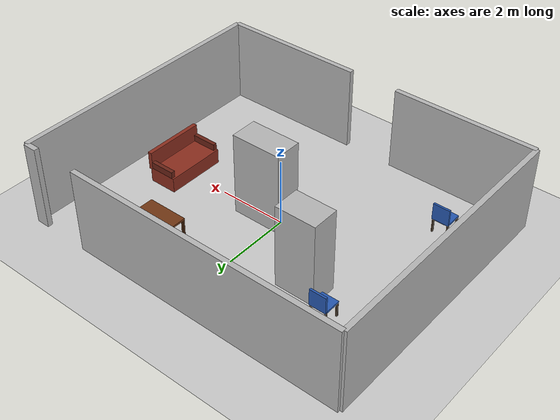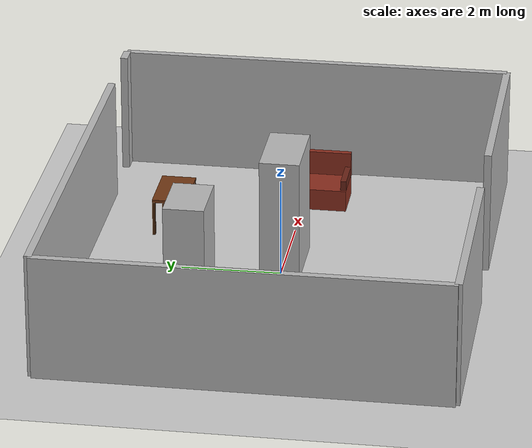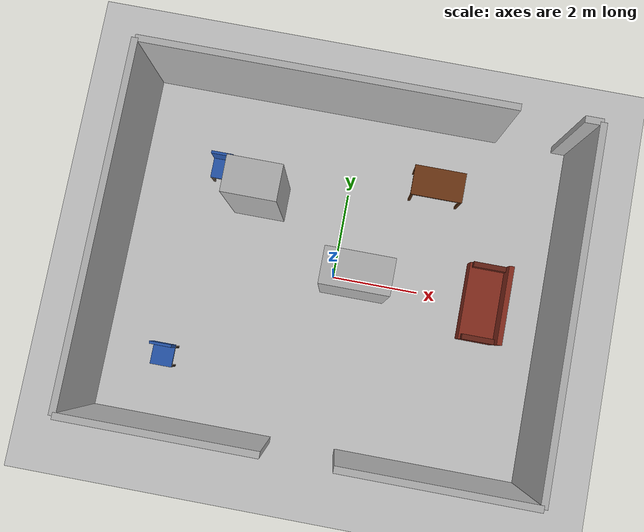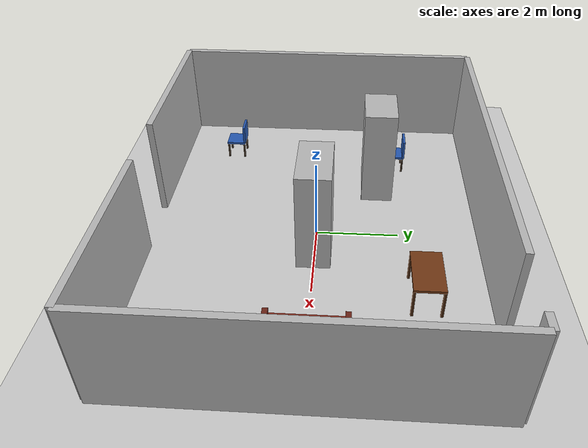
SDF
<?xml version="1.0"?>
<sdf version="1.7">
  <world name="uvc1_room">

    <!-- ========== GAZEBO ROS PLUGINS ========== -->
    <plugin name="gazebo_ros_state" filename="libgazebo_ros_state.so">
      <ros>
        <namespace>/gazebo</namespace>
      </ros>
      <update_rate>10.0</update_rate>
    </plugin>

    <!-- ========== LIGHTING ========== -->
    <light name="sun" type="directional">
      <cast_shadows>0</cast_shadows>
      <pose>0 0 10 0 0 0</pose>
      <diffuse>0.6 0.6 0.6 1</diffuse>
      <specular>0.1 0.1 0.1 1</specular>
      <attenuation>
        <range>1000</range>
        <constant>0.9</constant>
        <linear>0.01</linear>
        <quadratic>0.001</quadratic>
      </attenuation>
      <direction>0 0 -1</direction>
      <spot><inner_angle>0</inner_angle><outer_angle>0</outer_angle><falloff>0</falloff></spot>
    </light>

    <!-- ========== PHYSICS ========== -->
    <gravity>0 0 -9.8</gravity>
    <magnetic_field>6e-06 2.3e-05 -4.2e-05</magnetic_field>
    <atmosphere type="adiabatic"/>
    <physics type="ode">
      <max_step_size>0.001</max_step_size>
      <real_time_factor>1</real_time_factor>
      <real_time_update_rate>1000</real_time_update_rate>
    </physics>

    <!-- ========== SCENE ========== -->
    <scene>
      <ambient>0.4 0.4 0.4 1</ambient>
      <background>0.5 0.5 0.5 1</background>
      <shadows>0</shadows>
    </scene>

    <audio><device>default</device></audio>
    <wind/>
    <spherical_coordinates>
      <surface_model>EARTH_WGS84</surface_model>
      <latitude_deg>0</latitude_deg>
      <longitude_deg>0</longitude_deg>
      <elevation>0</elevation>
      <heading_deg>0</heading_deg>
    </spherical_coordinates>

    <!-- ========== GROUND PLANE ========== -->
    <model name="ground_plane">
      <static>1</static>
      <link name="link">
        <collision name="collision">
          <geometry><plane><normal>0 0 1</normal><size>100 100</size></plane></geometry>
          <surface>
            <friction><ode><mu>100</mu><mu2>50</mu2></ode><torsional><ode/></torsional></friction>
            <contact><ode/></contact>
            <bounce/>
          </surface>
          <max_contacts>10</max_contacts>
        </collision>
        <visual name="visual">
          <cast_shadows>0</cast_shadows>
          <geometry><plane><normal>0 0 1</normal><size>100 100</size></plane></geometry>
          <material>
            <script>
              <uri>file://media/materials/scripts/gazebo.material</uri>
              <n>Gazebo/Grey</n>
            </script>
          </material>
        </visual>
        <self_collide>0</self_collide>
        <enable_wind>0</enable_wind>
        <kinematic>0</kinematic>
      </link>
    </model>

    <!-- ========== ROOM WALLS (one model, links per wall segment) ========== -->
    <!-- Room: 10m wide (x: -5 to 5), 8m deep (y: -4 to 4), height 2.5m      -->
    <!-- Entry: 1.5m at south-center (x: -0.75 to 0.75)                       -->
    <!-- Exit:  1.5m at north-right  (x: 3.25 to 4.75)                        -->
    <model name="uvc1_room_walls">
      <static>1</static>
      <pose>0 0 0 0 0 0</pose>

      <link name="Wall_south_left">
        <collision name="col"><geometry><box><size>4.25 0.15 2.5</size></box></geometry><pose>0 0 1.25 0 0 0</pose><max_contacts>10</max_contacts><surface><contact><ode/></contact><bounce/><friction><torsional><ode/></torsional><ode/></friction></surface></collision>
        <visual name="vis"><pose>0 0 1.25 0 0 0</pose><geometry><box><size>4.25 0.15 2.5</size></box></geometry><material><script><uri>file://media/materials/scripts/gazebo.material</uri><n>Gazebo/Grey</n></script></material></visual>
        <pose>-2.875 -4.0 0 0 0 0</pose>
        <self_collide>0</self_collide><enable_wind>0</enable_wind><kinematic>0</kinematic>
      </link>

      <link name="Wall_south_right">
        <collision name="col"><geometry><box><size>4.25 0.15 2.5</size></box></geometry><pose>0 0 1.25 0 0 0</pose><max_contacts>10</max_contacts><surface><contact><ode/></contact><bounce/><friction><torsional><ode/></torsional><ode/></friction></surface></collision>
        <visual name="vis"><pose>0 0 1.25 0 0 0</pose><geometry><box><size>4.25 0.15 2.5</size></box></geometry><material><script><uri>file://media/materials/scripts/gazebo.material</uri><n>Gazebo/Grey</n></script></material></visual>
        <pose>2.875 -4.0 0 0 0 0</pose>
        <self_collide>0</self_collide><enable_wind>0</enable_wind><kinematic>0</kinematic>
      </link>

      <link name="Wall_north_left">
        <collision name="col"><geometry><box><size>8.25 0.15 2.5</size></box></geometry><pose>0 0 1.25 0 0 0</pose><max_contacts>10</max_contacts><surface><contact><ode/></contact><bounce/><friction><torsional><ode/></torsional><ode/></friction></surface></collision>
        <visual name="vis"><pose>0 0 1.25 0 0 0</pose><geometry><box><size>8.25 0.15 2.5</size></box></geometry><material><script><uri>file://media/materials/scripts/gazebo.material</uri><n>Gazebo/Grey</n></script></material></visual>
        <pose>-0.875 4.0 0 0 0 0</pose>
        <self_collide>0</self_collide><enable_wind>0</enable_wind><kinematic>0</kinematic>
      </link>

      <link name="Wall_north_right">
        <collision name="col"><geometry><box><size>0.4 0.15 2.5</size></box></geometry><pose>0 0 1.25 0 0 0</pose><max_contacts>10</max_contacts><surface><contact><ode/></contact><bounce/><friction><torsional><ode/></torsional><ode/></friction></surface></collision>
        <visual name="vis"><pose>0 0 1.25 0 0 0</pose><geometry><box><size>0.4 0.15 2.5</size></box></geometry><material><script><uri>file://media/materials/scripts/gazebo.material</uri><n>Gazebo/Grey</n></script></material></visual>
        <pose>4.8 4.0 0 0 0 0</pose>
        <self_collide>0</self_collide><enable_wind>0</enable_wind><kinematic>0</kinematic>
      </link>

      <link name="Wall_west">
        <collision name="col"><geometry><box><size>0.15 8.0 2.5</size></box></geometry><pose>0 0 1.25 0 0 0</pose><max_contacts>10</max_contacts><surface><contact><ode/></contact><bounce/><friction><torsional><ode/></torsional><ode/></friction></surface></collision>
        <visual name="vis"><pose>0 0 1.25 0 0 0</pose><geometry><box><size>0.15 8.0 2.5</size></box></geometry><material><script><uri>file://media/materials/scripts/gazebo.material</uri><n>Gazebo/Grey</n></script></material></visual>
        <pose>-5.0 0 0 0 0 0</pose>
        <self_collide>0</self_collide><enable_wind>0</enable_wind><kinematic>0</kinematic>
      </link>

      <link name="Wall_east">
        <collision name="col"><geometry><box><size>0.15 8.0 2.5</size></box></geometry><pose>0 0 1.25 0 0 0</pose><max_contacts>10</max_contacts><surface><contact><ode/></contact><bounce/><friction><torsional><ode/></torsional><ode/></friction></surface></collision>
        <visual name="vis"><pose>0 0 1.25 0 0 0</pose><geometry><box><size>0.15 8.0 2.5</size></box></geometry><material><script><uri>file://media/materials/scripts/gazebo.material</uri><n>Gazebo/Grey</n></script></material></visual>
        <pose>5.0 0 0 0 0 0</pose>
        <self_collide>0</self_collide><enable_wind>0</enable_wind><kinematic>0</kinematic>
      </link>

    </model>

    <!-- ========== CORRIDOR OBSTACLES (separate static models) ========== -->
    <model name="corridor_box_1">
      <static>1</static>
      <pose>-2.0 1.5 0 0 0 0</pose>
      <link name="link">
        <collision name="col"><geometry><box><size>1.2 0.8 2.5</size></box></geometry><pose>0 0 1.25 0 0 0</pose><max_contacts>10</max_contacts><surface><contact><ode/></contact><bounce/><friction><torsional><ode/></torsional><ode/></friction></surface></collision>
        <visual name="vis"><pose>0 0 1.25 0 0 0</pose><geometry><box><size>1.2 0.8 2.5</size></box></geometry><material><script><uri>file://media/materials/scripts/gazebo.material</uri><n>Gazebo/DarkGrey</n></script></material></visual>
        <self_collide>0</self_collide><enable_wind>0</enable_wind><kinematic>0</kinematic>
      </link>
    </model>

    <model name="corridor_box_2">
      <static>1</static>
      <pose>0.5 0.0 0 0 0 0</pose>
      <link name="link">
        <collision name="col"><geometry><box><size>1.5 0.8 2.5</size></box></geometry><pose>0 0 1.25 0 0 0</pose><max_contacts>10</max_contacts><surface><contact><ode/></contact><bounce/><friction><torsional><ode/></torsional><ode/></friction></surface></collision>
        <visual name="vis"><pose>0 0 1.25 0 0 0</pose><geometry><box><size>1.5 0.8 2.5</size></box></geometry><material><script><uri>file://media/materials/scripts/gazebo.material</uri><n>Gazebo/DarkGrey</n></script></material></visual>
        <self_collide>0</self_collide><enable_wind>0</enable_wind><kinematic>0</kinematic>
      </link>
    </model>

    <!-- ========== TABLE (separate static model, x=2.0 y=2.5) ========== -->
    <model name="table">
      <static>1</static>
      <pose>2.0 2.5 0 0 0 0</pose>
      <link name="link">
        <!-- Tabletop -->
        <visual name="top_vis"><pose>0 0 0.75 0 0 0</pose><geometry><box><size>1.2 0.7 0.06</size></box></geometry><material><ambient>0.45 0.22 0.08 1</ambient><diffuse>0.45 0.22 0.08 1</diffuse><specular>0.15 0.10 0.05 1</specular></material></visual>
        <collision name="top_col"><pose>0 0 0.75 0 0 0</pose><geometry><box><size>1.2 0.7 0.06</size></box></geometry><max_contacts>10</max_contacts></collision>
        <!-- Leg FL -->
        <visual name="leg_fl_vis"><pose>-0.56 -0.32 0.375 0 0 0</pose><geometry><box><size>0.06 0.06 0.75</size></box></geometry><material><ambient>0.28 0.14 0.04 1</ambient><diffuse>0.28 0.14 0.04 1</diffuse></material></visual>
        <collision name="leg_fl_col"><pose>-0.56 -0.32 0.375 0 0 0</pose><geometry><box><size>0.06 0.06 0.75</size></box></geometry><max_contacts>10</max_contacts></collision>
        <!-- Leg FR -->
        <visual name="leg_fr_vis"><pose>0.56 -0.32 0.375 0 0 0</pose><geometry><box><size>0.06 0.06 0.75</size></box></geometry><material><ambient>0.28 0.14 0.04 1</ambient><diffuse>0.28 0.14 0.04 1</diffuse></material></visual>
        <collision name="leg_fr_col"><pose>0.56 -0.32 0.375 0 0 0</pose><geometry><box><size>0.06 0.06 0.75</size></box></geometry><max_contacts>10</max_contacts></collision>
        <!-- Leg RL -->
        <visual name="leg_rl_vis"><pose>-0.56 0.32 0.375 0 0 0</pose><geometry><box><size>0.06 0.06 0.75</size></box></geometry><material><ambient>0.28 0.14 0.04 1</ambient><diffuse>0.28 0.14 0.04 1</diffuse></material></visual>
        <collision name="leg_rl_col"><pose>-0.56 0.32 0.375 0 0 0</pose><geometry><box><size>0.06 0.06 0.75</size></box></geometry><max_contacts>10</max_contacts></collision>
        <!-- Leg RR -->
        <visual name="leg_rr_vis"><pose>0.56 0.32 0.375 0 0 0</pose><geometry><box><size>0.06 0.06 0.75</size></box></geometry><material><ambient>0.28 0.14 0.04 1</ambient><diffuse>0.28 0.14 0.04 1</diffuse></material></visual>
        <collision name="leg_rr_col"><pose>0.56 0.32 0.375 0 0 0</pose><geometry><box><size>0.06 0.06 0.75</size></box></geometry><max_contacts>10</max_contacts></collision>
        <self_collide>0</self_collide><enable_wind>0</enable_wind><kinematic>0</kinematic>
      </link>
    </model>

    <!-- ========== CHAIR 1 (separate static model, x=-3.0 y=2.0) ========== -->
    <model name="chair_1">
      <static>1</static>
      <pose>-3.0 2.0 0 0 0 0</pose>
      <link name="link">
        <!-- Seat -->
        <visual name="seat_vis"><pose>0 0 0.45 0 0 0</pose><geometry><box><size>0.50 0.50 0.06</size></box></geometry><material><ambient>0.15 0.35 0.70 1</ambient><diffuse>0.15 0.35 0.70 1</diffuse><specular>0.05 0.05 0.10 1</specular></material></visual>
        <collision name="seat_col"><pose>0 0 0.45 0 0 0</pose><geometry><box><size>0.50 0.50 0.06</size></box></geometry><max_contacts>10</max_contacts></collision>
        <!-- Backrest -->
        <visual name="back_vis"><pose>0 0.24 0.70 0 0 0</pose><geometry><box><size>0.50 0.06 0.50</size></box></geometry><material><ambient>0.15 0.35 0.70 1</ambient><diffuse>0.15 0.35 0.70 1</diffuse><specular>0.05 0.05 0.10 1</specular></material></visual>
        <collision name="back_col"><pose>0 0.24 0.70 0 0 0</pose><geometry><box><size>0.50 0.06 0.50</size></box></geometry><max_contacts>10</max_contacts></collision>
        <!-- Legs -->
        <visual name="leg1_vis"><pose>-0.22 -0.22 0.225 0 0 0</pose><geometry><box><size>0.05 0.05 0.45</size></box></geometry><material><ambient>0.15 0.10 0.05 1</ambient><diffuse>0.15 0.10 0.05 1</diffuse></material></visual>
        <collision name="leg1_col"><pose>-0.22 -0.22 0.225 0 0 0</pose><geometry><box><size>0.05 0.05 0.45</size></box></geometry><max_contacts>10</max_contacts></collision>
        <visual name="leg2_vis"><pose>0.22 -0.22 0.225 0 0 0</pose><geometry><box><size>0.05 0.05 0.45</size></box></geometry><material><ambient>0.15 0.10 0.05 1</ambient><diffuse>0.15 0.10 0.05 1</diffuse></material></visual>
        <collision name="leg2_col"><pose>0.22 -0.22 0.225 0 0 0</pose><geometry><box><size>0.05 0.05 0.45</size></box></geometry><max_contacts>10</max_contacts></collision>
        <visual name="leg3_vis"><pose>-0.22 0.22 0.225 0 0 0</pose><geometry><box><size>0.05 0.05 0.45</size></box></geometry><material><ambient>0.15 0.10 0.05 1</ambient><diffuse>0.15 0.10 0.05 1</diffuse></material></visual>
        <collision name="leg3_col"><pose>-0.22 0.22 0.225 0 0 0</pose><geometry><box><size>0.05 0.05 0.45</size></box></geometry><max_contacts>10</max_contacts></collision>
        <visual name="leg4_vis"><pose>0.22 0.22 0.225 0 0 0</pose><geometry><box><size>0.05 0.05 0.45</size></box></geometry><material><ambient>0.15 0.10 0.05 1</ambient><diffuse>0.15 0.10 0.05 1</diffuse></material></visual>
        <collision name="leg4_col"><pose>0.22 0.22 0.225 0 0 0</pose><geometry><box><size>0.05 0.05 0.45</size></box></geometry><max_contacts>10</max_contacts></collision>
        <self_collide>0</self_collide><enable_wind>0</enable_wind><kinematic>0</kinematic>
      </link>
    </model>

    <!-- ========== CHAIR 2 (separate static model, x=-3.5 y=-2.5) ========== -->
    <model name="chair_2">
      <static>1</static>
      <pose>-3.5 -2.5 0 0 0 0</pose>
      <link name="link">
        <!-- Seat -->
        <visual name="seat_vis"><pose>0 0 0.45 0 0 0</pose><geometry><box><size>0.50 0.50 0.06</size></box></geometry><material><ambient>0.15 0.35 0.70 1</ambient><diffuse>0.15 0.35 0.70 1</diffuse><specular>0.05 0.05 0.10 1</specular></material></visual>
        <collision name="seat_col"><pose>0 0 0.45 0 0 0</pose><geometry><box><size>0.50 0.50 0.06</size></box></geometry><max_contacts>10</max_contacts></collision>
        <!-- Backrest -->
        <visual name="back_vis"><pose>0 0.24 0.70 0 0 0</pose><geometry><box><size>0.50 0.06 0.50</size></box></geometry><material><ambient>0.15 0.35 0.70 1</ambient><diffuse>0.15 0.35 0.70 1</diffuse><specular>0.05 0.05 0.10 1</specular></material></visual>
        <collision name="back_col"><pose>0 0.24 0.70 0 0 0</pose><geometry><box><size>0.50 0.06 0.50</size></box></geometry><max_contacts>10</max_contacts></collision>
        <!-- Legs -->
        <visual name="leg1_vis"><pose>-0.22 -0.22 0.225 0 0 0</pose><geometry><box><size>0.05 0.05 0.45</size></box></geometry><material><ambient>0.15 0.10 0.05 1</ambient><diffuse>0.15 0.10 0.05 1</diffuse></material></visual>
        <collision name="leg1_col"><pose>-0.22 -0.22 0.225 0 0 0</pose><geometry><box><size>0.05 0.05 0.45</size></box></geometry><max_contacts>10</max_contacts></collision>
        <visual name="leg2_vis"><pose>0.22 -0.22 0.225 0 0 0</pose><geometry><box><size>0.05 0.05 0.45</size></box></geometry><material><ambient>0.15 0.10 0.05 1</ambient><diffuse>0.15 0.10 0.05 1</diffuse></material></visual>
        <collision name="leg2_col"><pose>0.22 -0.22 0.225 0 0 0</pose><geometry><box><size>0.05 0.05 0.45</size></box></geometry><max_contacts>10</max_contacts></collision>
        <visual name="leg3_vis"><pose>-0.22 0.22 0.225 0 0 0</pose><geometry><box><size>0.05 0.05 0.45</size></box></geometry><material><ambient>0.15 0.10 0.05 1</ambient><diffuse>0.15 0.10 0.05 1</diffuse></material></visual>
        <collision name="leg3_col"><pose>-0.22 0.22 0.225 0 0 0</pose><geometry><box><size>0.05 0.05 0.45</size></box></geometry><max_contacts>10</max_contacts></collision>
        <visual name="leg4_vis"><pose>0.22 0.22 0.225 0 0 0</pose><geometry><box><size>0.05 0.05 0.45</size></box></geometry><material><ambient>0.15 0.10 0.05 1</ambient><diffuse>0.15 0.10 0.05 1</diffuse></material></visual>
        <collision name="leg4_col"><pose>0.22 0.22 0.225 0 0 0</pose><geometry><box><size>0.05 0.05 0.45</size></box></geometry><max_contacts>10</max_contacts></collision>
        <self_collide>0</self_collide><enable_wind>0</enable_wind><kinematic>0</kinematic>
      </link>
    </model>

    <!-- ========== COUCH (separate static model, x=3.5 y=0.0) ========== -->
    <model name="couch">
      <static>1</static>
      <pose>3.5 0.0 0 0 0 0</pose>
      <link name="link">
        <!-- Base/seat -->
        <visual name="base_vis"><pose>0 0 0.225 0 0 0</pose><geometry><box><size>0.85 1.80 0.45</size></box></geometry><material><ambient>0.55 0.18 0.12 1</ambient><diffuse>0.55 0.18 0.12 1</diffuse><specular>0.05 0.03 0.02 1</specular></material></visual>
        <collision name="base_col"><pose>0 0 0.225 0 0 0</pose><geometry><box><size>0.85 1.80 0.45</size></box></geometry><max_contacts>10</max_contacts></collision>
        <!-- Backrest -->
        <visual name="back_vis"><pose>0.43 0 0.675 0 0 0</pose><geometry><box><size>0.12 1.80 0.55</size></box></geometry><material><ambient>0.55 0.18 0.12 1</ambient><diffuse>0.55 0.18 0.12 1</diffuse><specular>0.05 0.03 0.02 1</specular></material></visual>
        <collision name="back_col"><pose>0.43 0 0.675 0 0 0</pose><geometry><box><size>0.12 1.80 0.55</size></box></geometry><max_contacts>10</max_contacts></collision>
        <!-- Armrest left -->
        <visual name="arm_l_vis"><pose>0 -0.84 0.55 0 0 0</pose><geometry><box><size>0.75 0.12 0.20</size></box></geometry><material><ambient>0.42 0.14 0.09 1</ambient><diffuse>0.42 0.14 0.09 1</diffuse></material></visual>
        <collision name="arm_l_col"><pose>0 -0.84 0.55 0 0 0</pose><geometry><box><size>0.75 0.12 0.20</size></box></geometry><max_contacts>10</max_contacts></collision>
        <!-- Armrest right -->
        <visual name="arm_r_vis"><pose>0 0.84 0.55 0 0 0</pose><geometry><box><size>0.75 0.12 0.20</size></box></geometry><material><ambient>0.42 0.14 0.09 1</ambient><diffuse>0.42 0.14 0.09 1</diffuse></material></visual>
        <collision name="arm_r_col"><pose>0 0.84 0.55 0 0 0</pose><geometry><box><size>0.75 0.12 0.20</size></box></geometry><max_contacts>10</max_contacts></collision>
        <self_collide>0</self_collide><enable_wind>0</enable_wind><kinematic>0</kinematic>
      </link>
    </model>

    <!-- ========== GUI CAMERA ========== -->
    <gui fullscreen="0">
      <camera name="user_camera">
        <pose>0 -12 15 0 0.785 1.5708</pose>
        <view_controller>orbit</view_controller>
        <projection_type>perspective</projection_type>
      </camera>
    </gui>

  </world>
</sdf>
